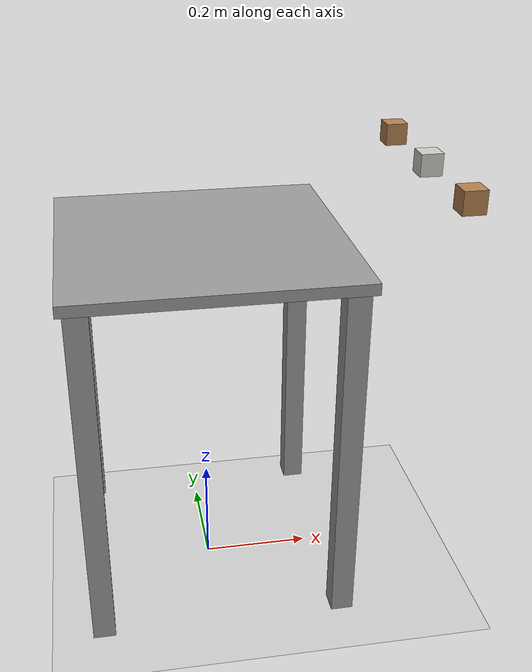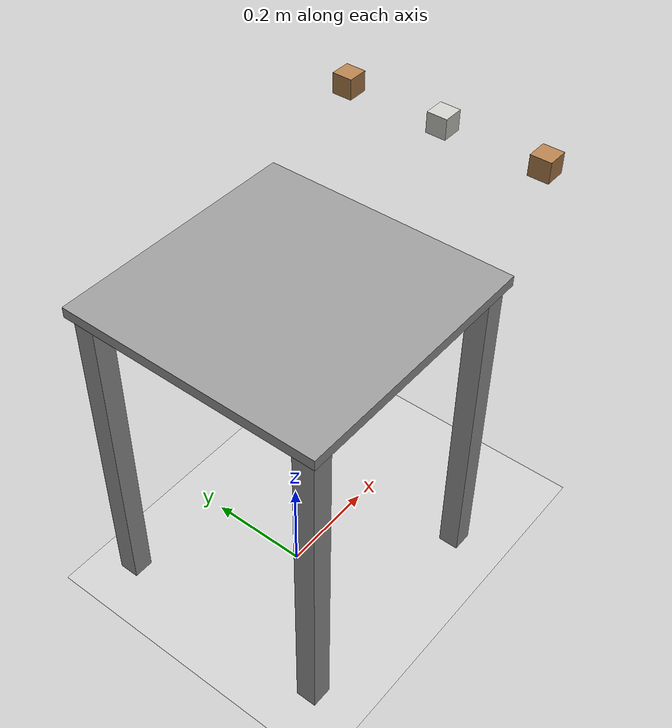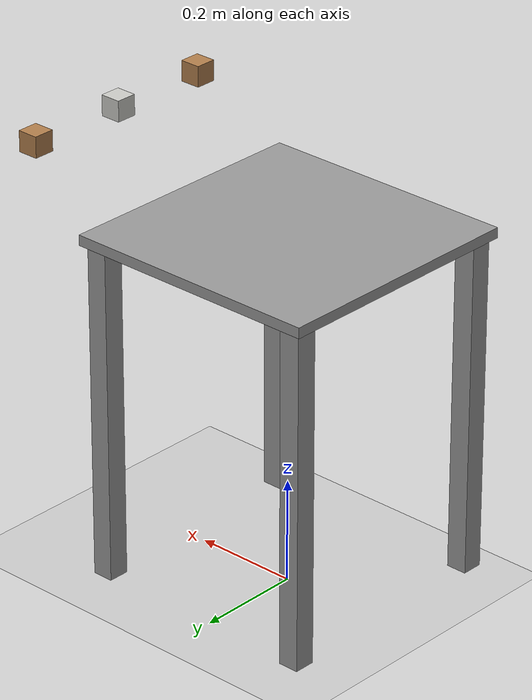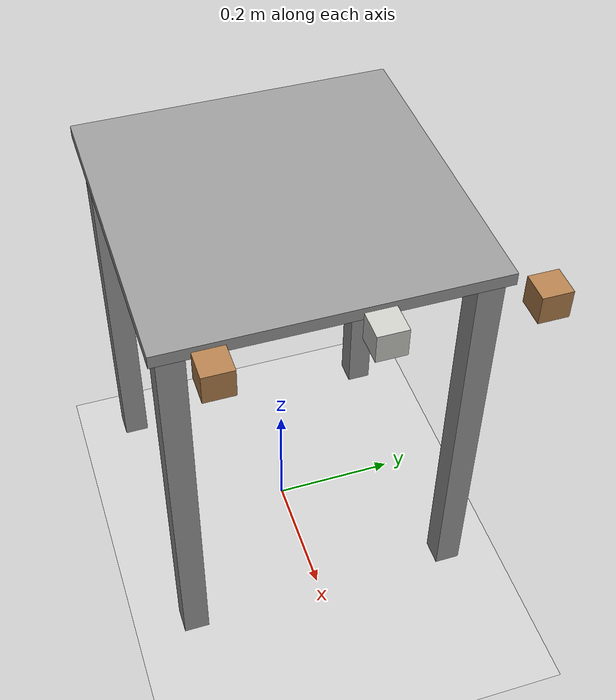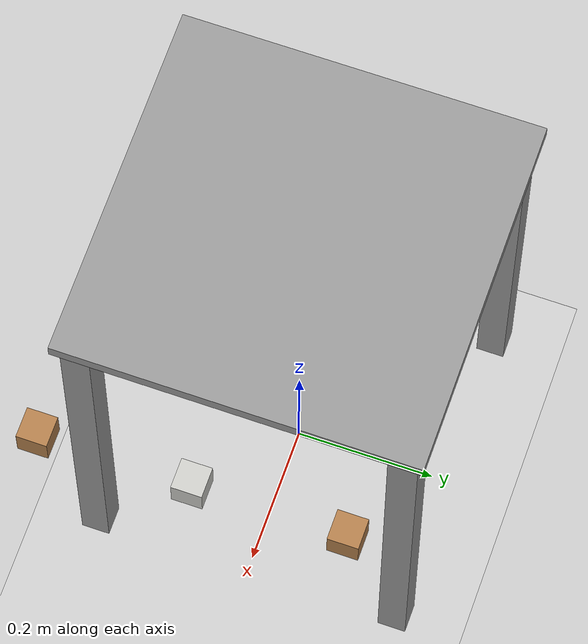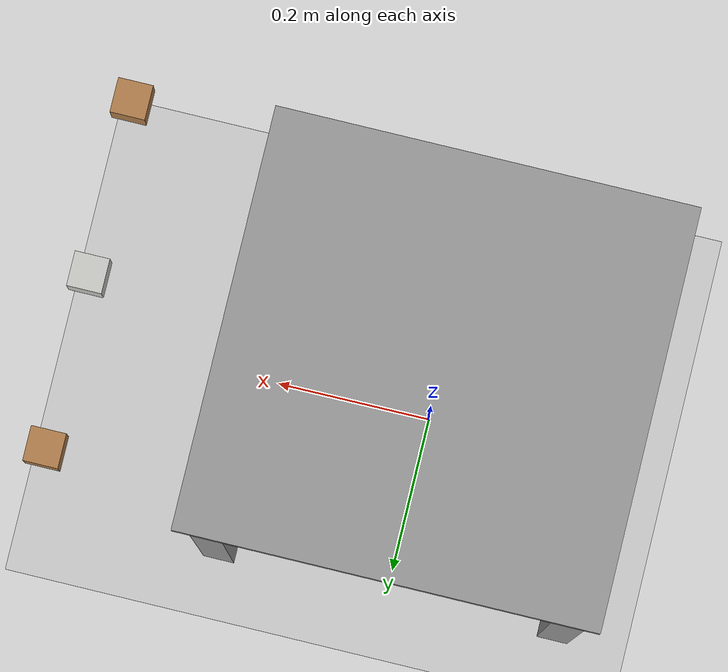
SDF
<sdf version="1.6">
 <world name="ur3_cubes">
  <gravity>0 0 -9.81</gravity>
  <physics name="default_physics" default="0" type="ode">
   <max_step_size>0.001</max_step_size>
   <real_time_factor>1</real_time_factor>
   <real_time_update_rate>1000</real_time_update_rate>
  </physics>
  <plugin name="ros_link_attacher_plugin" filename="libgazebo_ros_link_attacher.so"/>
  <scene><ambient>0.4 0.4 0.4 1</ambient><background>0.40 0.43 0.67 1</background><shadows>1</shadows></scene>
  <include><uri>model://sun</uri></include>
  <include><uri>model://floor</uri></include>
  <model name="ur_base"><include><uri>model://ur_base</uri></include></model>
  <model name="cube1">
   <pose>0.4 -0.2 0.775 0 0 0</pose>
   <link name="link">
    <pose>0 0 0.02 0 0 0</pose>
    <inertial>
     <mass>0.0565</mass>
     <inertia>
      <ixx>2.3541666666666672e-05</ixx>
      <ixy>0</ixy>
      <ixz>0</ixz>
      <iyy>2.3541666666666672e-05</iyy>
      <iyz>0</iyz>
      <izz>2.3541666666666672e-05</izz>
     </inertia>
    </inertial>
    <collision name="collision">
     <geometry><box><size>0.04 0.04 0.04</size></box></geometry>
     <surface>
      <contact>
       <poissons_ratio>0.347</poissons_ratio>
       <elastic_modulus>8.8e+09</elastic_modulus>
       <ode><kp>100000</kp><kd>1</kd><max_vel>1.0</max_vel><min_depth>0.001</min_depth></ode>
      </contact>
      <friction>
       <torsional>
        <coefficient>1.0</coefficient>
        <use_patch_radius>0</use_patch_radius>
        <surface_radius>0.05</surface_radius>
       </torsional>
      </friction>
     </surface>
    </collision>
    <visual name="visual">
     <geometry><box><size>0.04 0.04 0.04</size></box></geometry>
     <material>
      <script><uri>model://media/materials/scripts/gazebo.material</uri><name>Gazebo/Wood</name></script>
     </material>
    </visual>
   </link>
  </model>
  <model name="cube2">
   <pose>0.4 0 0.775 0 0 0</pose>
   <link name="link">
    <pose>0 0 0.02 0 0 0</pose>
    <inertial>
     <mass>0.0565</mass>
     <inertia>
      <ixx>2.3541666666666672e-05</ixx>
      <ixy>0</ixy>
      <ixz>0</ixz>
      <iyy>2.3541666666666672e-05</iyy>
      <iyz>0</iyz>
      <izz>2.3541666666666672e-05</izz>
     </inertia>
    </inertial>
    <collision name="collision">
     <geometry><box><size>0.04 0.04 0.04</size></box></geometry>
     <surface>
      <contact>
       <poissons_ratio>0.347</poissons_ratio>
       <elastic_modulus>8.8e+09</elastic_modulus>
       <ode><kp>100000</kp><kd>1</kd><max_vel>1.0</max_vel><min_depth>0.001</min_depth></ode>
      </contact>
      <friction>
       <torsional>
        <coefficient>1.0</coefficient>
        <use_patch_radius>0</use_patch_radius>
        <surface_radius>0.05</surface_radius>
       </torsional>
      </friction>
     </surface>
    </collision>
    <visual name="visual">
     <geometry><box><size>0.04 0.04 0.04</size></box></geometry>
     <material>
      <script><uri>model://media/materials/scripts/gazebo.material</uri><name>CeilingTiled</name></script>
     </material>
    </visual>
   </link>
  </model>
  <model name="cube3">
   <pose>0.4 0.2 0.775 0 0 0</pose>
   <link name="link">
    <pose>0 0 0.02 0 0 0</pose>
    <inertial>
     <mass>0.0565</mass>
     <inertia>
      <ixx>2.3541666666666672e-05</ixx>
      <ixy>0</ixy>
      <ixz>0</ixz>
      <iyy>2.3541666666666672e-05</iyy>
      <iyz>0</iyz>
      <izz>2.3541666666666672e-05</izz>
     </inertia>
    </inertial>
    <collision name="collision">
     <geometry><box><size>0.04 0.04 0.04</size></box></geometry>
     <surface>
      <contact>
       <poissons_ratio>0.347</poissons_ratio>
       <elastic_modulus>8.8e+09</elastic_modulus>
       <ode><kp>100000</kp><kd>1</kd><max_vel>1.0</max_vel><min_depth>0.001</min_depth></ode>
      </contact>
      <friction>
       <torsional>
        <coefficient>1.0</coefficient>
        <use_patch_radius>0</use_patch_radius>
        <surface_radius>0.05</surface_radius>
       </torsional>
      </friction>
     </surface>
    </collision>
    <visual name="visual">
     <geometry><box><size>0.04 0.04 0.04</size></box></geometry>
     <material>
      <script><uri>model://media/materials/scripts/gazebo.material</uri><name>Gazebo/WoodPallet</name></script>
     </material>
    </visual>
   </link>
  </model>
 </world>
</sdf>

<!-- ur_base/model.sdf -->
<sdf version="1.6">
  <model name="ur_base">
    <static>true</static>

    <link name="top_plate">
      <pose>0 0 0.67501 0 0 0</pose>
      <collision name="top_plate_collision">
        <geometry>
          <box>
            <size>0.5 0.5 0.02</size>
          </box>
        </geometry>
        <surface>
          <contact>
            <collide_bitmask>0x01</collide_bitmask>
          </contact>
        </surface>
      </collision>
      <visual name="top_plate_visual">
        <geometry>
          <box>
            <size>0.5 0.5 0.02</size>
          </box>
        </geometry>
        <material>
          <script>
            <uri>file://media/materials/scripts/gazebo.material</uri>
            <name>Gazebo/Grey</name>
          </script>
        </material>
      </visual>
    </link>
    <link name="leg1">
      <pose>0.22 0.22 0.35 0 0 0</pose>
      <visual name="leg1_visual">
        <geometry>
          <box>
            <size>0.04 0.04 0.655</size>
          </box>
        </geometry>
        <material>
          <script>
            <uri>file://media/materials/scripts/gazebo.material</uri>
            <name>Gazebo/Grey</name>
          </script>
        </material>
      </visual>
    </link>
    <link name="leg2">
      <pose>-0.22 0.22 0.35 0 0 0</pose>
      <visual name="leg2_visual">
        <geometry>
          <box>
            <size>0.04 0.04 0.655</size>
          </box>
        </geometry>
        <material>
          <script>
            <uri>file://media/materials/scripts/gazebo.material</uri>
            <name>Gazebo/Grey</name>
          </script>
        </material>
      </visual>
    </link>
    <link name="leg3">
      <pose>0.22 -0.22 0.35 0 0 0</pose>
      <visual name="leg3_visual">
        <geometry>
          <box>
            <size>0.04 0.04 0.655</size>
          </box>
        </geometry>
        <material>
          <script>
            <uri>file://media/materials/scripts/gazebo.material</uri>
            <name>Gazebo/Grey</name>
          </script>
        </material>
      </visual>
    </link>
    <link name="leg4">
      <pose>-0.22 -0.22 0.35 0 0 0</pose>
      <visual name="leg4_visual">
        <geometry>
          <box>
            <size>0.04 0.04 0.655</size>
          </box>
        </geometry>
        <material>
          <script>
            <uri>file://media/materials/scripts/gazebo.material</uri>
            <name>Gazebo/Grey</name>
          </script>
        </material>
      </visual>
    </link>
  </model>
</sdf>

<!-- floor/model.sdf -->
<sdf version="1.5">
  <model name="floor">
    <static>true</static>
    <link name="link">
      <collision name="collision">
        <geometry>
          <plane>
            <normal>0 0 1</normal>
            <size>10 10</size>
          </plane>
        </geometry>
        <surface>
          <contact>
             <collide_bitmask>0xffff</collide_bitmask>
          </contact>
          <friction>
            <ode>
              <mu>100</mu>
              <mu2>50</mu2>
            </ode>
          </friction>
        </surface>
      </collision>
      <visual name="visual">
        <cast_shadows>false</cast_shadows>
        <geometry>
          <plane>
            <normal>0 0 1</normal>
            <size>100 100</size>
          </plane>
        </geometry>
        <material>
          <script>
            <uri>file://floor/materials/scripts/checkboard.material</uri>
            <name>CheckerTexture</name>
          </script>
        </material>
      </visual>
    </link>
  </model>
</sdf>
